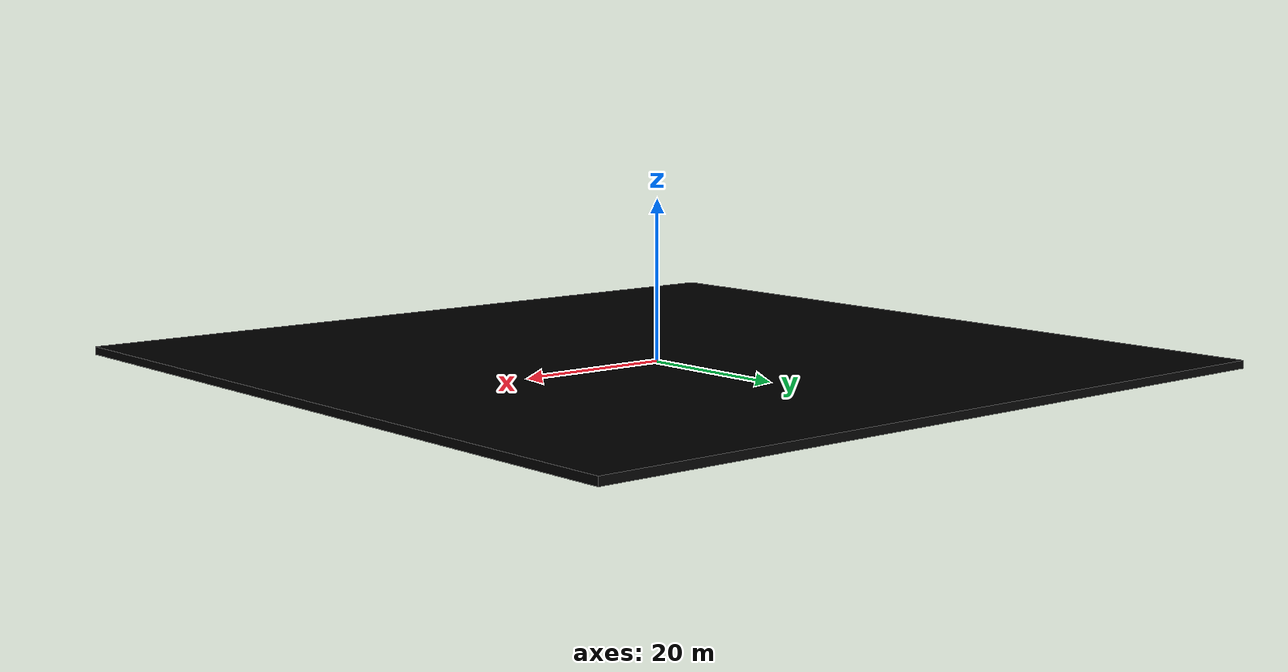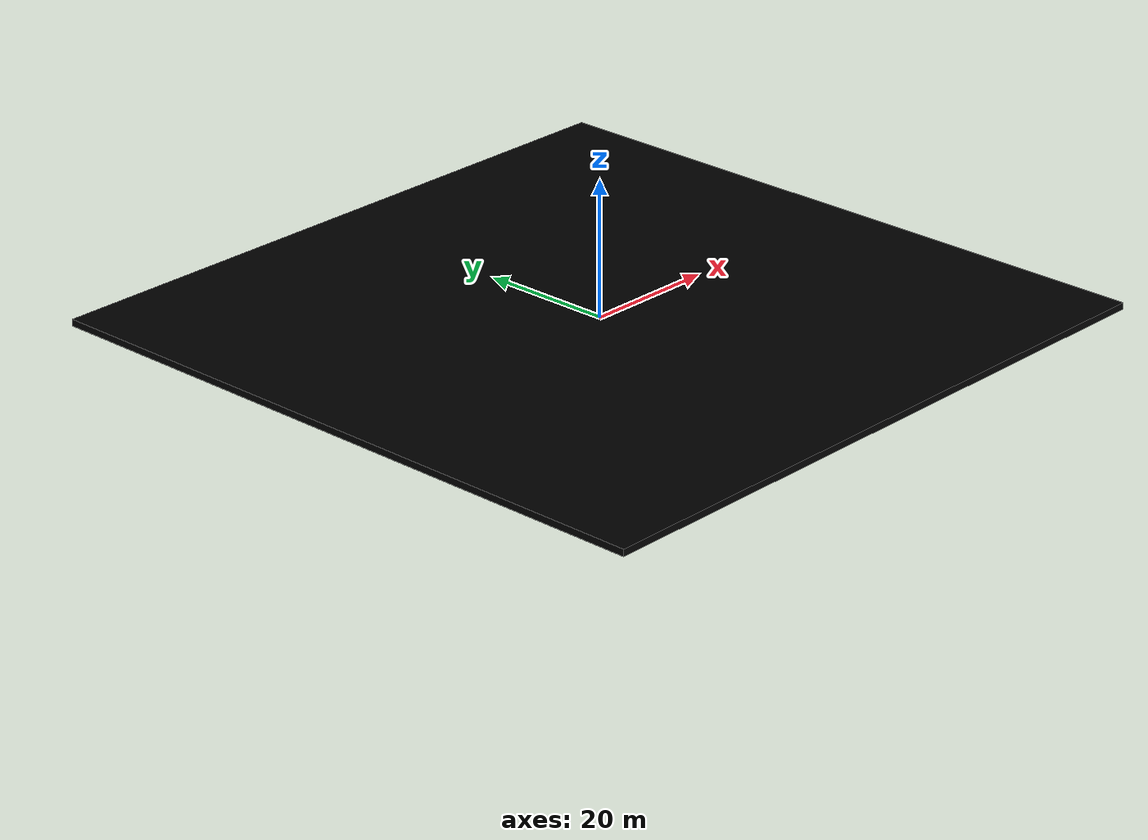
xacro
<?xml version="1.0"?>
<robot
     xmlns:xacro="http://www.ros.org/wiki/xacro" name="support">

<link name="world"/>

<link name="ground">
  <visual>
   <geometry>
      <box size="100 100 1"/>
   </geometry>
   <material name="black">
     <color rgba="0 0 0 100"/>
   </material>
  </visual>
 <collision>
   <geometry>
      <box size="100 100 1"/>
   </geometry>
    </collision>
<inertial>
      <origin xyz="0 0 0" rpy="0 0 0"/>
      <mass value="100"/>
      <inertia
        ixx="0" ixy="0.0" ixz="0.0"
        iyy="0" iyz="0.0"
        izz="0"/>
    </inertial>
</link>

<joint name="ground_joint" type="fixed">
  <parent link="world"/>
  <child link="ground"/>
  <origin xyz="0.0 0.0 0.5" rpy="0.0 0.0 0.0" />
</joint>

  <gazebo reference="ground">
    <material>Gazebo/White</material>
    <mu1 value="1000000"/>
    <mu2 value="1000000"/>
  </gazebo>

</robot>
